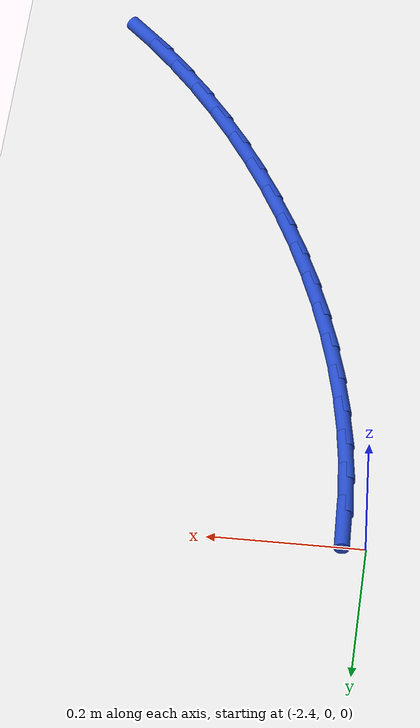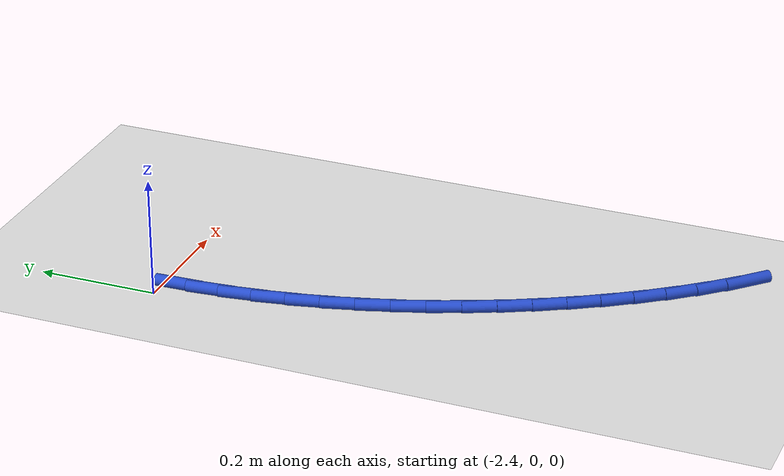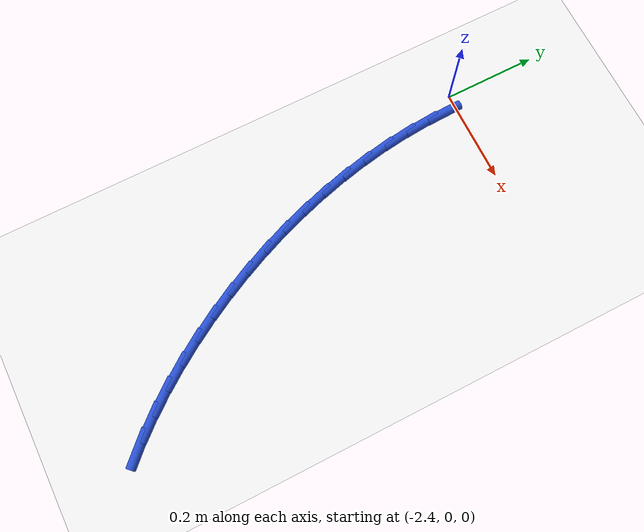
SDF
<sdf version="1.6">
 <world name="default">
  <model name="ground_plane">
   <static>1</static>
   <link name="link">
    <collision name="collision">
     <geometry><plane><normal>0 0 1</normal><size>100 100</size></plane></geometry>
     <surface><friction><ode><mu>100</mu><mu2>50</mu2></ode></friction></surface>
    </collision>
    <visual name="visual">
     <cast_shadows>0</cast_shadows>
     <geometry><plane><normal>0 0 1</normal><size>100 100</size></plane></geometry>
     <material>
      <script><uri>file://media/materials/scripts/gazebo.material</uri><name>Gazebo/WhiteGlow</name></script>
     </material>
    </visual>
   </link>
  </model>
  <model name="line">
   <link name="link_70">
    <pose>-2.369192866001754 -0.030960285567104562 0.01 0 1.57 -1.532916333319428</pose>
    <collision name="collision">
     <geometry><cylinder><radius>0.01</radius><length>0.08</length></cylinder></geometry>
    </collision>
    <visual name="visual">
     <material>
      <script><name>Gazebo/Blue</name><uri>file://media/materials/scripts/gazebo.material</uri></script>
     </material>
     <geometry><cylinder><radius>0.01</radius><length>0.08</length></cylinder></geometry>
    </visual>
   </link>
   <link name="link_71">
    <pose>-2.3671338408462335 -0.08529081851936018 0.01 0 1.57 -1.4812065436259776</pose>
    <collision name="collision">
     <geometry><cylinder><radius>0.01</radius><length>0.08</length></cylinder></geometry>
    </collision>
    <visual name="visual">
     <material>
      <script><name>Gazebo/Blue</name><uri>file://media/materials/scripts/gazebo.material</uri></script>
     </material>
     <geometry><cylinder><radius>0.01</radius><length>0.08</length></cylinder></geometry>
    </visual>
   </link>
   <link name="link_72">
    <pose>-2.3622280979013737 -0.1399020778320112 0.01 0 1.57 -1.4320964205907463</pose>
    <collision name="collision">
     <geometry><cylinder><radius>0.01</radius><length>0.08</length></cylinder></geometry>
    </collision>
    <visual name="visual">
     <material>
      <script><name>Gazebo/Blue</name><uri>file://media/materials/scripts/gazebo.material</uri></script>
     </material>
     <geometry><cylinder><radius>0.01</radius><length>0.08</length></cylinder></geometry>
    </visual>
   </link>
   <link name="link_73">
    <pose>-2.3545897266005595 -0.19461968435705881 0.01 0 1.57 -1.3852695806720274</pose>
    <collision name="collision">
     <geometry><cylinder><radius>0.01</radius><length>0.08</length></cylinder></geometry>
    </collision>
    <visual name="visual">
     <material>
      <script><name>Gazebo/Blue</name><uri>file://media/materials/scripts/gazebo.material</uri></script>
     </material>
     <geometry><cylinder><radius>0.01</radius><length>0.08</length></cylinder></geometry>
    </visual>
   </link>
   <link name="link_74">
    <pose>-2.3443328163771757 -0.24926925894650187 0.01 0 1.57 -1.3404080794999933</pose>
    <collision name="collision">
     <geometry><cylinder><radius>0.01</radius><length>0.08</length></cylinder></geometry>
    </collision>
    <visual name="visual">
     <material>
      <script><name>Gazebo/Blue</name><uri>file://media/materials/scripts/gazebo.material</uri></script>
     </material>
     <geometry><cylinder><radius>0.01</radius><length>0.08</length></cylinder></geometry>
    </visual>
   </link>
   <link name="link_75">
    <pose>-2.3315714566646077 -0.3036764224523416 0.01 0 1.57 -1.2971966300554192</pose>
    <collision name="collision">
     <geometry><cylinder><radius>0.01</radius><length>0.08</length></cylinder></geometry>
    </collision>
    <visual name="visual">
     <material>
      <script><name>Gazebo/Blue</name><uri>file://media/materials/scripts/gazebo.material</uri></script>
     </material>
     <geometry><cylinder><radius>0.01</radius><length>0.08</length></cylinder></geometry>
    </visual>
   </link>
   <link name="link_76">
    <pose>-2.31641973689624 -0.35766679572657845 0.01 0 1.57 -1.2553242483349523</pose>
    <collision name="collision">
     <geometry><cylinder><radius>0.01</radius><length>0.08</length></cylinder></geometry>
    </collision>
    <visual name="visual">
     <material>
      <script><name>Gazebo/Blue</name><uri>file://media/materials/scripts/gazebo.material</uri></script>
     </material>
     <geometry><cylinder><radius>0.01</radius><length>0.08</length></cylinder></geometry>
    </visual>
   </link>
   <link name="link_77">
    <pose>-2.298991746505458 -0.411065999621213 0.01 0 1.57 -1.214483958629442</pose>
    <collision name="collision">
     <geometry><cylinder><radius>0.01</radius><length>0.08</length></cylinder></geometry>
    </collision>
    <visual name="visual">
     <material>
      <script><name>Gazebo/Blue</name><uri>file://media/materials/scripts/gazebo.material</uri></script>
     </material>
     <geometry><cylinder><radius>0.01</radius><length>0.08</length></cylinder></geometry>
    </visual>
   </link>
   <link name="link_78">
    <pose>-2.279401574925646 -0.4636996549882464 0.01 0 1.57 -1.1743710351229162</pose>
    <collision name="collision">
     <geometry><cylinder><radius>0.01</radius><length>0.08</length></cylinder></geometry>
    </collision>
    <visual name="visual">
     <material>
      <script><name>Gazebo/Blue</name><uri>file://media/materials/scripts/gazebo.material</uri></script>
     </material>
     <geometry><cylinder><radius>0.01</radius><length>0.08</length></cylinder></geometry>
    </visual>
   </link>
   <link name="link_79">
    <pose>-2.2577633115901903 -0.5153933826796775 0.01 0 1.57 -1.134680114921873</pose>
    <collision name="collision">
     <geometry><cylinder><radius>0.01</radius><length>0.08</length></cylinder></geometry>
    </collision>
    <visual name="visual">
     <material>
      <script><name>Gazebo/Blue</name><uri>file://media/materials/scripts/gazebo.material</uri></script>
     </material>
     <geometry><cylinder><radius>0.01</radius><length>0.08</length></cylinder></geometry>
    </visual>
   </link>
   <link name="link_80">
    <pose>-2.234191045932475 -0.5659728035475076 0.01 0 1.57 -1.0951014000303425</pose>
    <collision name="collision">
     <geometry><cylinder><radius>0.01</radius><length>0.08</length></cylinder></geometry>
    </collision>
    <visual name="visual">
     <material>
      <script><name>Gazebo/Blue</name><uri>file://media/materials/scripts/gazebo.material</uri></script>
     </material>
     <geometry><cylinder><radius>0.01</radius><length>0.08</length></cylinder></geometry>
    </visual>
   </link>
   <link name="link_81">
    <pose>-2.2087988673858856 -0.6152635384437368 0.01 0 1.57 -1.055316075023826</pose>
    <collision name="collision">
     <geometry><cylinder><radius>0.01</radius><length>0.08</length></cylinder></geometry>
    </collision>
    <visual name="visual">
     <material>
      <script><name>Gazebo/Blue</name><uri>file://media/materials/scripts/gazebo.material</uri></script>
     </material>
     <geometry><cylinder><radius>0.01</radius><length>0.08</length></cylinder></geometry>
    </visual>
   </link>
   <link name="link_82">
    <pose>-2.1817008653838075 -0.6630912082203669 0.01 0 1.57 -1.0149910038278502</pose>
    <collision name="collision">
     <geometry><cylinder><radius>0.01</radius><length>0.08</length></cylinder></geometry>
    </collision>
    <visual name="visual">
     <material>
      <script><name>Gazebo/Blue</name><uri>file://media/materials/scripts/gazebo.material</uri></script>
     </material>
     <geometry><cylinder><radius>0.01</radius><length>0.08</length></cylinder></geometry>
    </visual>
   </link>
   <link name="link_83">
    <pose>-2.1530111293596255 -0.7092814337293966 0.01 0 1.57 -0.9735969219177171</pose>
    <collision name="collision">
     <geometry><cylinder><radius>0.01</radius><length>0.08</length></cylinder></geometry>
    </collision>
    <visual name="visual">
     <material>
      <script><name>Gazebo/Blue</name><uri>file://media/materials/scripts/gazebo.material</uri></script>
     </material>
     <geometry><cylinder><radius>0.01</radius><length>0.08</length></cylinder></geometry>
    </visual>
   </link>
   <link name="link_84">
    <pose>-2.122819601722197 -0.7536785671830484 0.01 0 1.57 -0.9300949378839116</pose>
    <collision name="collision">
     <geometry><cylinder><radius>0.01</radius><length>0.08</length></cylinder></geometry>
    </collision>
    <visual name="visual">
     <material>
      <script><name>Gazebo/Blue</name><uri>file://media/materials/scripts/gazebo.material</uri></script>
     </material>
     <geometry><cylinder><radius>0.01</radius><length>0.08</length></cylinder></geometry>
    </visual>
   </link>
   <link name="link_85">
    <pose>-2.09110328759548 -0.7962145686461586 0.01 0 1.57 -0.8842951386524368</pose>
    <collision name="collision">
     <geometry><cylinder><radius>0.01</radius><length>0.08</length></cylinder></geometry>
    </collision>
    <visual name="visual">
     <material>
      <script><name>Gazebo/Blue</name><uri>file://media/materials/scripts/gazebo.material</uri></script>
     </material>
     <geometry><cylinder><radius>0.01</radius><length>0.08</length></cylinder></geometry>
    </visual>
   </link>
   <link name="link_86">
    <pose>-2.0578062014499436 -0.8368469897347582 0.01 0 1.57 -0.8363257723098917</pose>
    <collision name="collision">
     <geometry><cylinder><radius>0.01</radius><length>0.08</length></cylinder></geometry>
    </collision>
    <visual name="visual">
     <material>
      <script><name>Gazebo/Blue</name><uri>file://media/materials/scripts/gazebo.material</uri></script>
     </material>
     <geometry><cylinder><radius>0.01</radius><length>0.08</length></cylinder></geometry>
    </visual>
   </link>
   <link name="link_87">
    <pose>-2.022872353760147 -0.8755333851645939 0.01 0 1.57 -0.7863709035076141</pose>
    <collision name="collision">
     <geometry><cylinder><radius>0.01</radius><length>0.08</length></cylinder></geometry>
    </collision>
    <visual name="visual">
     <material>
      <script><name>Gazebo/Blue</name><uri>file://media/materials/scripts/gazebo.material</uri></script>
     </material>
     <geometry><cylinder><radius>0.01</radius><length>0.08</length></cylinder></geometry>
    </visual>
   </link>
  </model>
 </world>
</sdf>
